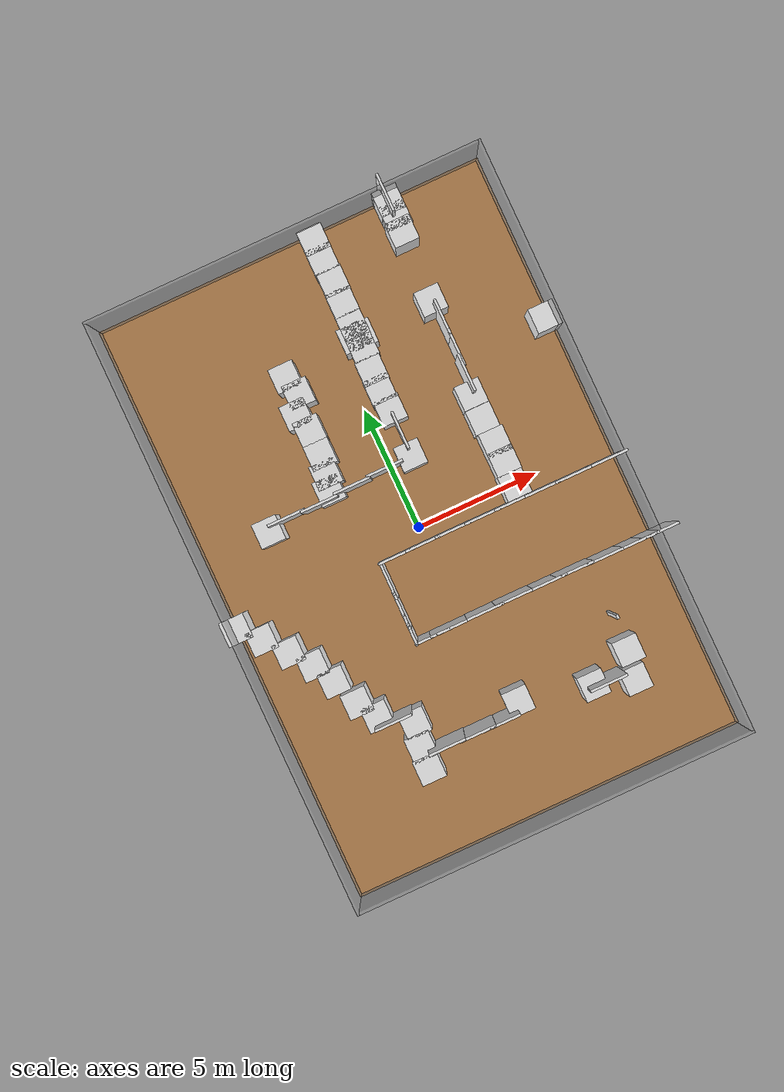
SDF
<sdf version="1.6">
 <world name="default">
  <light name="sun" type="directional">
   <pose>0 0 10 0 -0 0</pose>
   <diffuse>0.8 0.8 0.8 1</diffuse>
   <specular>0.2 0.2 0.2 1</specular>
   <attenuation>
    <range>1000</range>
    <constant>0.9</constant>
    <linear>0.01</linear>
    <quadratic>0.001</quadratic>
   </attenuation>
   <direction>-0.5 0.1 -0.9</direction>
  </light>
  <physics name="default_physics" default="0" type="ode">
   <real_time_update_rate>1000</real_time_update_rate>
   <max_step_size>0.001</max_step_size>
   <real_time_factor>1</real_time_factor>
   <ode>
    <solver>
     <type>quick</type>
     <iters>150</iters>
     <precon_iters>0</precon_iters>
     <sor>1.4</sor>
     <use_dynamic_moi_rescaling>1</use_dynamic_moi_rescaling>
    </solver>
    <constraints>
     <cfm>1e-05</cfm>
     <erp>0.2</erp>
     <contact_max_correcting_vel>2000</contact_max_correcting_vel>
     <contact_surface_layer>0.01</contact_surface_layer>
    </constraints>
   </ode>
  </physics>
  <model name="box_1">
   <pose>0.05 -12.05 1.25 0 -0 0</pose>
   <static>1</static>
   <link name="link">
    <collision name="collision"><geometry><box><size>16.1 0.1 2.5</size></box></geometry></collision>
    <visual name="visual">
     <geometry><box><size>16.1 0.1 2.5</size></box></geometry>
     <material>
      <script><name>Gazebo/GreyTransparent</name><uri>file://media/materials/scripts/gazebo.material</uri></script>
     </material>
    </visual>
   </link>
  </model>
  <model name="box_2">
   <pose>8.05 0.05 1.25 0 -0 0</pose>
   <static>1</static>
   <link name="link">
    <collision name="collision"><geometry><box><size>0.1 24.1 2.5</size></box></geometry></collision>
    <visual name="visual">
     <geometry><box><size>0.1 24.1 2.5</size></box></geometry>
     <material>
      <script><name>Gazebo/GreyTransparent</name><uri>file://media/materials/scripts/gazebo.material</uri></script>
     </material>
    </visual>
   </link>
  </model>
  <model name="box_3">
   <pose>-0.05 12.05 1.25 0 -0 0</pose>
   <static>1</static>
   <link name="link">
    <collision name="collision"><geometry><box><size>16.1 0.1 2.5</size></box></geometry></collision>
    <visual name="visual">
     <geometry><box><size>16.1 0.1 2.5</size></box></geometry>
     <material>
      <script><name>Gazebo/GreyTransparent</name><uri>file://media/materials/scripts/gazebo.material</uri></script>
     </material>
    </visual>
   </link>
  </model>
  <model name="box_4">
   <pose>-8.05 -0.05 1.25 0 -0 0</pose>
   <static>1</static>
   <link name="link">
    <collision name="collision"><geometry><box><size>0.1 24.1 2.5</size></box></geometry></collision>
    <visual name="visual">
     <geometry><box><size>0.1 24.1 2.5</size></box></geometry>
     <material>
      <script><name>Gazebo/GreyTransparent</name><uri>file://media/materials/scripts/gazebo.material</uri></script>
     </material>
    </visual>
   </link>
  </model>
  <model name="box_5">
   <pose>0 0 -0.05 0 -0 0</pose>
   <static>1</static>
   <link name="link">
    <collision name="collision"><geometry><box><size>16.2 24.2 0.1</size></box></geometry></collision>
    <visual name="visual">
     <geometry><box><size>16.2 24.2 0.1</size></box></geometry>
     <material>
      <script><name>Gazebo/WoodFloor</name><uri>file://media/materials/scripts/gazebo.material</uri></script>
     </material>
    </visual>
   </link>
  </model>
  <gravity>0 0 -9.8066</gravity>
  <magnetic_field>6e-06 2.3e-05 -4.2e-05</magnetic_field>
  <atmosphere type="adiabatic"/>
  <scene><ambient>0.4 0.4 0.4 1</ambient><background>0.7 0.7 0.7 1</background><shadows>1</shadows></scene>
  <spherical_coordinates>
   <surface_model>EARTH_WGS84</surface_model>
   <latitude_deg>0</latitude_deg>
   <longitude_deg>0</longitude_deg>
   <elevation>0</elevation>
   <heading_deg>0</heading_deg>
  </spherical_coordinates>
  <model name="box_8_clone">
   <pose>7.48667 -0.628309 1.25 0 -0 0</pose>
   <static>1</static>
   <link name="link">
    <collision name="collision"><geometry><box><size>1.5 0.1 2.5</size></box></geometry></collision>
    <visual name="visual">
     <geometry><box><size>1.5 0.1 2.5</size></box></geometry>
     <material>
      <script><name>Gazebo/White</name><uri>file://media/materials/scripts/gazebo.material</uri></script>
     </material>
    </visual>
   </link>
  </model>
  <model name="box_8_clone_clone">
   <pose>6.02834 -0.629635 1.25 0 -0 0</pose>
   <static>1</static>
   <link name="link">
    <collision name="collision"><geometry><box><size>1.5 0.1 2.5</size></box></geometry></collision>
    <visual name="visual">
     <geometry><box><size>1.5 0.1 2.5</size></box></geometry>
     <material>
      <script><name>Gazebo/White</name><uri>file://media/materials/scripts/gazebo.material</uri></script>
     </material>
    </visual>
   </link>
  </model>
  <model name="box_8_clone_clone_0">
   <pose>4.79045 -0.62339 1.25 0 -0 0</pose>
   <static>1</static>
   <link name="link">
    <collision name="collision"><geometry><box><size>1.5 0.1 2.5</size></box></geometry></collision>
    <visual name="visual">
     <geometry><box><size>1.5 0.1 2.5</size></box></geometry>
     <material>
      <script><name>Gazebo/White</name><uri>file://media/materials/scripts/gazebo.material</uri></script>
     </material>
    </visual>
   </link>
  </model>
  <model name="box_8_clone_clone_1">
   <pose>3.55347 -0.612787 1.25 0 -0 0</pose>
   <static>1</static>
   <link name="link">
    <collision name="collision"><geometry><box><size>1.5 0.1 2.5</size></box></geometry></collision>
    <visual name="visual">
     <geometry><box><size>1.5 0.1 2.5</size></box></geometry>
     <material>
      <script><name>Gazebo/White</name><uri>file://media/materials/scripts/gazebo.material</uri></script>
     </material>
    </visual>
   </link>
  </model>
  <model name="box_8_clone_clone_2">
   <pose>2.33718 -0.610519 1.25 0 -0 0</pose>
   <static>1</static>
   <link name="link">
    <collision name="collision"><geometry><box><size>1.5 0.1 2.5</size></box></geometry></collision>
    <visual name="visual">
     <geometry><box><size>1.5 0.1 2.5</size></box></geometry>
     <material>
      <script><name>Gazebo/White</name><uri>file://media/materials/scripts/gazebo.material</uri></script>
     </material>
    </visual>
   </link>
  </model>
  <model name="box_8_clone_clone_3">
   <pose>1.13648 -0.604834 1.25 0 -0 0</pose>
   <static>1</static>
   <link name="link">
    <collision name="collision"><geometry><box><size>1.5 0.1 2.5</size></box></geometry></collision>
    <visual name="visual">
     <geometry><box><size>1.5 0.1 2.5</size></box></geometry>
     <material>
      <script><name>Gazebo/White</name><uri>file://media/materials/scripts/gazebo.material</uri></script>
     </material>
    </visual>
   </link>
  </model>
  <model name="box_8_clone_clone_4">
   <pose>-0.06939 -0.608032 1.25 0 -0 0</pose>
   <static>1</static>
   <link name="link">
    <collision name="collision"><geometry><box><size>1.5 0.1 2.5</size></box></geometry></collision>
    <visual name="visual">
     <geometry><box><size>1.5 0.1 2.5</size></box></geometry>
     <material>
      <script><name>Gazebo/White</name><uri>file://media/materials/scripts/gazebo.material</uri></script>
     </material>
    </visual>
   </link>
  </model>
  <model name="box_8_clone_clone_5">
   <pose>-1.19812 -0.614896 1.25 0 -0 0</pose>
   <static>1</static>
   <link name="link">
    <collision name="collision"><geometry><box><size>1.5 0.1 2.5</size></box></geometry></collision>
    <visual name="visual">
     <geometry><box><size>1.5 0.1 2.5</size></box></geometry>
     <material>
      <script><name>Gazebo/White</name><uri>file://media/materials/scripts/gazebo.material</uri></script>
     </material>
    </visual>
   </link>
  </model>
  <model name="box_8_clone_clone_11">
   <pose>-0.566924 -3.87205 1.25 0 -0 0</pose>
   <static>1</static>
   <link name="link">
    <collision name="collision"><geometry><box><size>1.5 0.1 2.5</size></box></geometry></collision>
    <visual name="visual">
     <geometry><box><size>1.5 0.1 2.5</size></box></geometry>
     <material>
      <script><name>Gazebo/White</name><uri>file://media/materials/scripts/gazebo.material</uri></script>
     </material>
    </visual>
   </link>
  </model>
  <model name="box_8_clone_clone_12">
   <pose>0.932378 -3.8577 1.25 0 -0 0</pose>
   <static>1</static>
   <link name="link">
    <collision name="collision"><geometry><box><size>1.5 0.1 2.5</size></box></geometry></collision>
    <visual name="visual">
     <geometry><box><size>1.5 0.1 2.5</size></box></geometry>
     <material>
      <script><name>Gazebo/White</name><uri>file://media/materials/scripts/gazebo.material</uri></script>
     </material>
    </visual>
   </link>
  </model>
  <model name="box_8_clone_clone_13">
   <pose>2.09308 -3.84636 1.25 0 -0 0</pose>
   <static>1</static>
   <link name="link">
    <collision name="collision"><geometry><box><size>1.5 0.1 2.5</size></box></geometry></collision>
    <visual name="visual">
     <geometry><box><size>1.5 0.1 2.5</size></box></geometry>
     <material>
      <script><name>Gazebo/White</name><uri>file://media/materials/scripts/gazebo.material</uri></script>
     </material>
    </visual>
   </link>
  </model>
  <model name="box_9_clone_clone_0">
   <pose>-3.46298 -8.44795 0.75 0 -0 0</pose>
   <static>1</static>
   <link name="link">
    <collision name="collision"><geometry><box><size>1 1 1.5</size></box></geometry></collision>
    <visual name="visual">
     <geometry><box><size>1 1 1.5</size></box></geometry>
     <material>
      <script><name>Gazebo/White</name><uri>file://media/materials/scripts/gazebo.material</uri></script>
     </material>
    </visual>
   </link>
  </model>
  <model name="box_9_clone_clone_1">
   <pose>-3.40186 -7.56359 0.75 0 -0 0</pose>
   <static>1</static>
   <link name="link">
    <collision name="collision"><geometry><box><size>1 1 1.5</size></box></geometry></collision>
    <visual name="visual">
     <geometry><box><size>1 1 1.5</size></box></geometry>
     <material>
      <script><name>Gazebo/White</name><uri>file://media/materials/scripts/gazebo.material</uri></script>
     </material>
    </visual>
   </link>
  </model>
  <model name="box_9_clone_clone_2">
   <pose>-3.23885 -6.64819 0.75 0 -0 0</pose>
   <static>1</static>
   <link name="link">
    <collision name="collision"><geometry><box><size>1 1 1.5</size></box></geometry></collision>
    <visual name="visual">
     <geometry><box><size>1 1 1.5</size></box></geometry>
     <material>
      <script><name>Gazebo/White</name><uri>file://media/materials/scripts/gazebo.material</uri></script>
     </material>
    </visual>
   </link>
  </model>
  <model name="box_9_clone_clone_3">
   <pose>5.04068 -8.64867 0.75 0 -0 0</pose>
   <static>1</static>
   <link name="link">
    <collision name="collision"><geometry><box><size>1 1 1.5</size></box></geometry></collision>
    <visual name="visual">
     <geometry><box><size>1 1 1.5</size></box></geometry>
     <material>
      <script><name>Gazebo/White</name><uri>file://media/materials/scripts/gazebo.material</uri></script>
     </material>
    </visual>
   </link>
  </model>
  <model name="box_9_clone_clone_4">
   <pose>5.24363 -7.53941 0.75 0 -0 0</pose>
   <static>1</static>
   <link name="link">
    <collision name="collision"><geometry><box><size>1 1 1.5</size></box></geometry></collision>
    <visual name="visual">
     <geometry><box><size>1 1 1.5</size></box></geometry>
     <material>
      <script><name>Gazebo/White</name><uri>file://media/materials/scripts/gazebo.material</uri></script>
     </material>
    </visual>
   </link>
  </model>
  <model name="box_9_clone_clone_5">
   <pose>-2.21389 4.06737 0.75 0 -0 0</pose>
   <static>1</static>
   <link name="link">
    <collision name="collision"><geometry><box><size>1 1 1.5</size></box></geometry></collision>
    <visual name="visual">
     <geometry><box><size>1 1 1.5</size></box></geometry>
     <material>
      <script><name>Gazebo/White</name><uri>file://media/materials/scripts/gazebo.material</uri></script>
     </material>
    </visual>
   </link>
  </model>
  <model name="box_9_clone_clone_6">
   <pose>-2.20594 5.05311 0.75 0 -0 0</pose>
   <static>1</static>
   <link name="link">
    <collision name="collision"><geometry><box><size>1 1 1.5</size></box></geometry></collision>
    <visual name="visual">
     <geometry><box><size>1 1 1.5</size></box></geometry>
     <material>
      <script><name>Gazebo/White</name><uri>file://media/materials/scripts/gazebo.material</uri></script>
     </material>
    </visual>
   </link>
  </model>
  <model name="box_9_clone_clone_7">
   <pose>-2.40815 5.82285 0.75 0 -0 0</pose>
   <static>1</static>
   <link name="link">
    <collision name="collision"><geometry><box><size>1 1 1.5</size></box></geometry></collision>
    <visual name="visual">
     <geometry><box><size>1 1 1.5</size></box></geometry>
     <material>
      <script><name>Gazebo/White</name><uri>file://media/materials/scripts/gazebo.material</uri></script>
     </material>
    </visual>
   </link>
  </model>
  <model name="box_9_clone_clone_8">
   <pose>-2 6.49358 0.75 0 -0 0</pose>
   <static>1</static>
   <link name="link">
    <collision name="collision"><geometry><box><size>1 1 1.5</size></box></geometry></collision>
    <visual name="visual">
     <geometry><box><size>1 1 1.5</size></box></geometry>
     <material>
      <script><name>Gazebo/White</name><uri>file://media/materials/scripts/gazebo.material</uri></script>
     </material>
    </visual>
   </link>
  </model>
  <model name="box_9_clone_clone_9">
   <pose>-2.19565 7.27454 0.75 0 -0 0</pose>
   <static>1</static>
   <link name="link">
    <collision name="collision"><geometry><box><size>1 1 1.5</size></box></geometry></collision>
    <visual name="visual">
     <geometry><box><size>1 1 1.5</size></box></geometry>
     <material>
      <script><name>Gazebo/White</name><uri>file://media/materials/scripts/gazebo.material</uri></script>
     </material>
    </visual>
   </link>
  </model>
  <model name="box_8_clone_clone_13_clone">
   <pose>3.50729 -3.85595 1.25 0 -0 0</pose>
   <static>1</static>
   <link name="link">
    <collision name="collision"><geometry><box><size>1.5 0.1 2.5</size></box></geometry></collision>
    <visual name="visual">
     <geometry><box><size>1.5 0.1 2.5</size></box></geometry>
     <material>
      <script><name>Gazebo/White</name><uri>file://media/materials/scripts/gazebo.material</uri></script>
     </material>
    </visual>
   </link>
  </model>
  <model name="box_8_clone_clone_13_clone_clone">
   <pose>4.59318 -3.85436 1.25 0 -0 0</pose>
   <static>1</static>
   <link name="link">
    <collision name="collision"><geometry><box><size>1.5 0.1 2.5</size></box></geometry></collision>
    <visual name="visual">
     <geometry><box><size>1.5 0.1 2.5</size></box></geometry>
     <material>
      <script><name>Gazebo/White</name><uri>file://media/materials/scripts/gazebo.material</uri></script>
     </material>
    </visual>
   </link>
  </model>
  <model name="box_8_clone_clone_13_clone_clone_clone">
   <pose>5.79386 -3.87288 1.25 0 -0 0</pose>
   <static>1</static>
   <link name="link">
    <collision name="collision"><geometry><box><size>1.5 0.1 2.5</size></box></geometry></collision>
    <visual name="visual">
     <geometry><box><size>1.5 0.1 2.5</size></box></geometry>
     <material>
      <script><name>Gazebo/White</name><uri>file://media/materials/scripts/gazebo.material</uri></script>
     </material>
    </visual>
   </link>
  </model>
  <model name="box_8_clone_clone_13_clone_clone_clone_clone">
   <pose>7.15374 -3.87624 1.25 0 -0 0</pose>
   <static>1</static>
   <link name="link">
    <collision name="collision"><geometry><box><size>1.5 0.1 2.5</size></box></geometry></collision>
    <visual name="visual">
     <geometry><box><size>1.5 0.1 2.5</size></box></geometry>
     <material>
      <script><name>Gazebo/White</name><uri>file://media/materials/scripts/gazebo.material</uri></script>
     </material>
    </visual>
   </link>
  </model>
  <model name="box_8_clone_clone_13_clone_clone_clone_clone_0">
   <pose>8.06241 -3.86612 1.25 0 -0 0</pose>
   <static>1</static>
   <link name="link">
    <collision name="collision"><geometry><box><size>1.5 0.1 2.5</size></box></geometry></collision>
    <visual name="visual">
     <geometry><box><size>1.5 0.1 2.5</size></box></geometry>
     <material>
      <script><name>Gazebo/White</name><uri>file://media/materials/scripts/gazebo.material</uri></script>
     </material>
    </visual>
   </link>
  </model>
  <model name="box_6_clone_clone">
   <pose>-1.85615 -1.32182 1.25 0 -0 0</pose>
   <static>1</static>
   <link name="link">
    <collision name="collision"><geometry><box><size>0.1 1.5 2.5</size></box></geometry></collision>
    <visual name="visual">
     <geometry><box><size>0.1 1.5 2.5</size></box></geometry>
     <material>
      <script><name>Gazebo/White</name><uri>file://media/materials/scripts/gazebo.material</uri></script>
     </material>
    </visual>
   </link>
  </model>
  <model name="box_6_clone_clone_0">
   <pose>-1.87249 -2.52994 1.25 0 -0 0</pose>
   <static>1</static>
   <link name="link">
    <collision name="collision"><geometry><box><size>0.1 1.5 2.5</size></box></geometry></collision>
    <visual name="visual">
     <geometry><box><size>0.1 1.5 2.5</size></box></geometry>
     <material>
      <script><name>Gazebo/White</name><uri>file://media/materials/scripts/gazebo.material</uri></script>
     </material>
    </visual>
   </link>
  </model>
  <model name="box_6_clone_clone_1">
   <pose>-1.88063 -3.20694 1.25 0 -0 0</pose>
   <static>1</static>
   <link name="link">
    <collision name="collision"><geometry><box><size>0.1 1.5 2.5</size></box></geometry></collision>
    <visual name="visual">
     <geometry><box><size>0.1 1.5 2.5</size></box></geometry>
     <material>
      <script><name>Gazebo/White</name><uri>file://media/materials/scripts/gazebo.material</uri></script>
     </material>
    </visual>
   </link>
  </model>
  <model name="box_8_clone_clone_11_clone">
   <pose>-1.1954 -3.87817 1.25 0 -0 0</pose>
   <static>1</static>
   <link name="link">
    <collision name="collision"><geometry><box><size>1.5 0.1 2.5</size></box></geometry></collision>
    <visual name="visual">
     <geometry><box><size>1.5 0.1 2.5</size></box></geometry>
     <material>
      <script><name>Gazebo/White</name><uri>file://media/materials/scripts/gazebo.material</uri></script>
     </material>
    </visual>
   </link>
  </model>
  <model name="box_9_clone_clone_5_clone">
   <pose>3.96534 -0.058836 0.75 0 -0 0</pose>
   <static>1</static>
   <link name="link">
    <collision name="collision"><geometry><box><size>1 1 1.5</size></box></geometry></collision>
    <visual name="visual">
     <geometry><box><size>1 1 1.5</size></box></geometry>
     <material>
      <script><name>Gazebo/White</name><uri>file://media/materials/scripts/gazebo.material</uri></script>
     </material>
    </visual>
   </link>
  </model>
  <model name="box_9_clone_clone_5_clone_0">
   <pose>3.99405 0.91295 0.75 0 -0 0</pose>
   <static>1</static>
   <link name="link">
    <collision name="collision"><geometry><box><size>1 1 1.5</size></box></geometry></collision>
    <visual name="visual">
     <geometry><box><size>1 1 1.5</size></box></geometry>
     <material>
      <script><name>Gazebo/White</name><uri>file://media/materials/scripts/gazebo.material</uri></script>
     </material>
    </visual>
   </link>
  </model>
  <model name="box_9_clone_clone_5_clone_1">
   <pose>3.98833 1.72238 0.75 0 -0 0</pose>
   <static>1</static>
   <link name="link">
    <collision name="collision"><geometry><box><size>1 1 1.5</size></box></geometry></collision>
    <visual name="visual">
     <geometry><box><size>1 1 1.5</size></box></geometry>
     <material>
      <script><name>Gazebo/White</name><uri>file://media/materials/scripts/gazebo.material</uri></script>
     </material>
    </visual>
   </link>
  </model>
  <model name="box_9_clone_clone_5_clone_2">
   <pose>3.91224 2.71803 0.75 0 -0 0</pose>
   <static>1</static>
   <link name="link">
    <collision name="collision"><geometry><box><size>1 1 1.5</size></box></geometry></collision>
    <visual name="visual">
     <geometry><box><size>1 1 1.5</size></box></geometry>
     <material>
      <script><name>Gazebo/White</name><uri>file://media/materials/scripts/gazebo.material</uri></script>
     </material>
    </visual>
   </link>
  </model>
  <model name="box_9_clone_clone_5_clone_3">
   <pose>3.90875 3.72901 0.75 0 -0 0</pose>
   <static>1</static>
   <link name="link">
    <collision name="collision"><geometry><box><size>1 1 1.5</size></box></geometry></collision>
    <visual name="visual">
     <geometry><box><size>1 1 1.5</size></box></geometry>
     <material>
      <script><name>Gazebo/White</name><uri>file://media/materials/scripts/gazebo.material</uri></script>
     </material>
    </visual>
   </link>
  </model>
  <model name="box_6_clone_clone_2">
   <pose>4.0167 4.46766 1.25 0 -0 0</pose>
   <static>1</static>
   <link name="link">
    <collision name="collision"><geometry><box><size>0.1 1.5 2.5</size></box></geometry></collision>
    <visual name="visual">
     <geometry><box><size>0.1 1.5 2.5</size></box></geometry>
     <material>
      <script><name>Gazebo/White</name><uri>file://media/materials/scripts/gazebo.material</uri></script>
     </material>
    </visual>
   </link>
  </model>
  <model name="box_6_clone_clone_3">
   <pose>4.07127 5.47003 1.25 0 -0 0</pose>
   <static>1</static>
   <link name="link">
    <collision name="collision"><geometry><box><size>0.1 1.5 2.5</size></box></geometry></collision>
    <visual name="visual">
     <geometry><box><size>0.1 1.5 2.5</size></box></geometry>
     <material>
      <script><name>Gazebo/White</name><uri>file://media/materials/scripts/gazebo.material</uri></script>
     </material>
    </visual>
   </link>
  </model>
  <model name="box_6_clone_clone_4">
   <pose>4.06892 6.67693 1.25 0 -0 0</pose>
   <static>1</static>
   <link name="link">
    <collision name="collision"><geometry><box><size>0.1 1.5 2.5</size></box></geometry></collision>
    <visual name="visual">
     <geometry><box><size>0.1 1.5 2.5</size></box></geometry>
     <material>
      <script><name>Gazebo/White</name><uri>file://media/materials/scripts/gazebo.material</uri></script>
     </material>
    </visual>
   </link>
  </model>
  <model name="box_9_clone_clone_9_clone">
   <pose>0.96273 11.5341 0.75 0 -0 0</pose>
   <static>1</static>
   <link name="link">
    <collision name="collision"><geometry><box><size>1 1 1.5</size></box></geometry></collision>
    <visual name="visual">
     <geometry><box><size>1 1 1.5</size></box></geometry>
     <material>
      <script><name>Gazebo/White</name><uri>file://media/materials/scripts/gazebo.material</uri></script>
     </material>
    </visual>
   </link>
  </model>
  <model name="box_9_clone_clone_9_clone_0">
   <pose>0.951303 10.7343 0.75 0 -0 0</pose>
   <static>1</static>
   <link name="link">
    <collision name="collision"><geometry><box><size>1 1 1.5</size></box></geometry></collision>
    <visual name="visual">
     <geometry><box><size>1 1 1.5</size></box></geometry>
     <material>
      <script><name>Gazebo/White</name><uri>file://media/materials/scripts/gazebo.material</uri></script>
     </material>
    </visual>
   </link>
  </model>
  <model name="box_9_clone_clone_9_clone_1">
   <pose>0.976499 9.79829 0.75 0 -0 0</pose>
   <static>1</static>
   <link name="link">
    <collision name="collision"><geometry><box><size>1 1 1.5</size></box></geometry></collision>
    <visual name="visual">
     <geometry><box><size>1 1 1.5</size></box></geometry>
     <material>
      <script><name>Gazebo/White</name><uri>file://media/materials/scripts/gazebo.material</uri></script>
     </material>
    </visual>
   </link>
  </model>
  <model name="box_9_clone_clone_9_clone_2">
   <pose>0.954322 8.93155 0.75 0 -0 0</pose>
   <static>1</static>
   <link name="link">
    <collision name="collision"><geometry><box><size>1 1 1.5</size></box></geometry></collision>
    <visual name="visual">
     <geometry><box><size>1 1 1.5</size></box></geometry>
     <material>
      <script><name>Gazebo/White</name><uri>file://media/materials/scripts/gazebo.material</uri></script>
     </material>
    </visual>
   </link>
  </model>
  <model name="box_9_clone_clone_9_clone_3">
   <pose>0.946415 7.9797 0.75 0 -0 0</pose>
   <static>1</static>
   <link name="link">
    <collision name="collision"><geometry><box><size>1 1 1.5</size></box></geometry></collision>
    <visual name="visual">
     <geometry><box><size>1 1 1.5</size></box></geometry>
     <material>
      <script><name>Gazebo/White</name><uri>file://media/materials/scripts/gazebo.material</uri></script>
     </material>
    </visual>
   </link>
  </model>
  <model name="box_9_clone_clone_9_clone_4">
   <pose>0.936307 7.10204 0.75 0 -0 0</pose>
   <static>1</static>
   <link name="link">
    <collision name="collision"><geometry><box><size>1 1 1.5</size></box></geometry></collision>
    <visual name="visual">
     <geometry><box><size>1 1 1.5</size></box></geometry>
     <material>
      <script><name>Gazebo/White</name><uri>file://media/materials/scripts/gazebo.material</uri></script>
     </material>
    </visual>
   </link>
  </model>
  <model name="box_9_clone_clone_9_clone_5">
   <pose>0.888259 6.13659 0.75 0 -0 0</pose>
   <static>1</static>
   <link name="link">
    <collision name="collision"><geometry><box><size>1 1 1.5</size></box></geometry></collision>
    <visual name="visual">
     <geometry><box><size>1 1 1.5</size></box></geometry>
     <material>
      <script><name>Gazebo/White</name><uri>file://media/materials/scripts/gazebo.material</uri></script>
     </material>
    </visual>
   </link>
  </model>
  <model name="box_9_clone_clone_9_clone_6">
   <pose>0.861538 5.35753 0.75 0 -0 0</pose>
   <static>1</static>
   <link name="link">
    <collision name="collision"><geometry><box><size>1 1 1.5</size></box></geometry></collision>
    <visual name="visual">
     <geometry><box><size>1 1 1.5</size></box></geometry>
     <material>
      <script><name>Gazebo/White</name><uri>file://media/materials/scripts/gazebo.material</uri></script>
     </material>
    </visual>
   </link>
  </model>
  <model name="box_9_clone_clone_9_clone_7">
   <pose>0.897234 4.48322 0.75 0 -0 0</pose>
   <static>1</static>
   <link name="link">
    <collision name="collision"><geometry><box><size>1 1 1.5</size></box></geometry></collision>
    <visual name="visual">
     <geometry><box><size>1 1 1.5</size></box></geometry>
     <material>
      <script><name>Gazebo/White</name><uri>file://media/materials/scripts/gazebo.material</uri></script>
     </material>
    </visual>
   </link>
  </model>
  <model name="box_6_clone_clone_5">
   <pose>0.889787 3.56461 1.25 0 -0 0</pose>
   <static>1</static>
   <link name="link">
    <collision name="collision"><geometry><box><size>0.1 1.5 2.5</size></box></geometry></collision>
    <visual name="visual">
     <geometry><box><size>0.1 1.5 2.5</size></box></geometry>
     <material>
      <script><name>Gazebo/White</name><uri>file://media/materials/scripts/gazebo.material</uri></script>
     </material>
    </visual>
   </link>
  </model>
  <model name="box_9_clone_clone_5_clone_4">
   <pose>0.8658 2.60984 0.75 0 -0 0</pose>
   <static>1</static>
   <link name="link">
    <collision name="collision"><geometry><box><size>1 1 1.5</size></box></geometry></collision>
    <visual name="visual">
     <geometry><box><size>1 1 1.5</size></box></geometry>
     <material>
      <script><name>Gazebo/White</name><uri>file://media/materials/scripts/gazebo.material</uri></script>
     </material>
    </visual>
   </link>
  </model>
  <model name="box_8_clone_clone_4_clone">
   <pose>-0.234697 2.5213 1.25 0 -0 0</pose>
   <static>1</static>
   <link name="link">
    <collision name="collision"><geometry><box><size>1.5 0.1 2.5</size></box></geometry></collision>
    <visual name="visual">
     <geometry><box><size>1.5 0.1 2.5</size></box></geometry>
     <material>
      <script><name>Gazebo/White</name><uri>file://media/materials/scripts/gazebo.material</uri></script>
     </material>
    </visual>
   </link>
  </model>
  <model name="box_8_clone_clone_4_clone_0">
   <pose>-1.6022 2.45178 1.25 0 -0 0</pose>
   <static>1</static>
   <link name="link">
    <collision name="collision"><geometry><box><size>1.5 0.1 2.5</size></box></geometry></collision>
    <visual name="visual">
     <geometry><box><size>1.5 0.1 2.5</size></box></geometry>
     <material>
      <script><name>Gazebo/White</name><uri>file://media/materials/scripts/gazebo.material</uri></script>
     </material>
    </visual>
   </link>
  </model>
  <model name="box_8_clone_clone_4_clone_1">
   <pose>-2.98043 2.34503 1.25 0 -0 0</pose>
   <static>1</static>
   <link name="link">
    <collision name="collision"><geometry><box><size>1.5 0.1 2.5</size></box></geometry></collision>
    <visual name="visual">
     <geometry><box><size>1.5 0.1 2.5</size></box></geometry>
     <material>
      <script><name>Gazebo/White</name><uri>file://media/materials/scripts/gazebo.material</uri></script>
     </material>
    </visual>
   </link>
  </model>
  <model name="box_8_clone_clone_4_clone_2">
   <pose>-4.30694 2.39293 1.25 0 -0 0</pose>
   <static>1</static>
   <link name="link">
    <collision name="collision"><geometry><box><size>1.5 0.1 2.5</size></box></geometry></collision>
    <visual name="visual">
     <geometry><box><size>1.5 0.1 2.5</size></box></geometry>
     <material>
      <script><name>Gazebo/White</name><uri>file://media/materials/scripts/gazebo.material</uri></script>
     </material>
    </visual>
   </link>
  </model>
  <model name="box_9_clone_clone_7_clone">
   <pose>-5.21616 2.23106 0.75 0 -0 0</pose>
   <static>1</static>
   <link name="link">
    <collision name="collision"><geometry><box><size>1 1 1.5</size></box></geometry></collision>
    <visual name="visual">
     <geometry><box><size>1 1 1.5</size></box></geometry>
     <material>
      <script><name>Gazebo/White</name><uri>file://media/materials/scripts/gazebo.material</uri></script>
     </material>
    </visual>
   </link>
  </model>
  <model name="box_9_clone_clone_5_clone_5">
   <pose>-2.33314 3.29946 0.75 0 -0 0</pose>
   <static>1</static>
   <link name="link">
    <collision name="collision"><geometry><box><size>1 1 1.5</size></box></geometry></collision>
    <visual name="visual">
     <geometry><box><size>1 1 1.5</size></box></geometry>
     <material>
      <script><name>Gazebo/White</name><uri>file://media/materials/scripts/gazebo.material</uri></script>
     </material>
    </visual>
   </link>
  </model>
  <model name="box_9_clone_clone_5_clone_6">
   <pose>-2.48571 2.70071 0.75 0 -0 0</pose>
   <static>1</static>
   <link name="link">
    <collision name="collision"><geometry><box><size>1 1 1.5</size></box></geometry></collision>
    <visual name="visual">
     <geometry><box><size>1 1 1.5</size></box></geometry>
     <material>
      <script><name>Gazebo/White</name><uri>file://media/materials/scripts/gazebo.material</uri></script>
     </material>
    </visual>
   </link>
  </model>
  <model name="box_9_clone_clone_7_clone_clone">
   <pose>-7.89766 -0.627489 0.75 0 -0 0</pose>
   <static>1</static>
   <link name="link">
    <collision name="collision"><geometry><box><size>1 1 1.5</size></box></geometry></collision>
    <visual name="visual">
     <geometry><box><size>1 1 1.5</size></box></geometry>
     <material>
      <script><name>Gazebo/White</name><uri>file://media/materials/scripts/gazebo.material</uri></script>
     </material>
    </visual>
   </link>
  </model>
  <model name="box_9_clone_clone_7_clone_clone_0">
   <pose>-7.17028 -1.37248 0.75 0 -0 0</pose>
   <static>1</static>
   <link name="link">
    <collision name="collision"><geometry><box><size>1 1 1.5</size></box></geometry></collision>
    <visual name="visual">
     <geometry><box><size>1 1 1.5</size></box></geometry>
     <material>
      <script><name>Gazebo/White</name><uri>file://media/materials/scripts/gazebo.material</uri></script>
     </material>
    </visual>
   </link>
  </model>
  <model name="box_9_clone_clone_7_clone_clone_1">
   <pose>-6.44194 -2.23118 0.75 0 -0 0</pose>
   <static>1</static>
   <link name="link">
    <collision name="collision"><geometry><box><size>1 1 1.5</size></box></geometry></collision>
    <visual name="visual">
     <geometry><box><size>1 1 1.5</size></box></geometry>
     <material>
      <script><name>Gazebo/White</name><uri>file://media/materials/scripts/gazebo.material</uri></script>
     </material>
    </visual>
   </link>
  </model>
  <model name="box_9_clone_clone_7_clone_clone_2">
   <pose>-5.82661 -3.0536 0.75 0 -0 0</pose>
   <static>1</static>
   <link name="link">
    <collision name="collision"><geometry><box><size>1 1 1.5</size></box></geometry></collision>
    <visual name="visual">
     <geometry><box><size>1 1 1.5</size></box></geometry>
     <material>
      <script><name>Gazebo/White</name><uri>file://media/materials/scripts/gazebo.material</uri></script>
     </material>
    </visual>
   </link>
  </model>
  <model name="box_9_clone_clone_7_clone_clone_3">
   <pose>-5.3619 -3.95424 0.75 0 -0 0</pose>
   <static>1</static>
   <link name="link">
    <collision name="collision"><geometry><box><size>1 1 1.5</size></box></geometry></collision>
    <visual name="visual">
     <geometry><box><size>1 1 1.5</size></box></geometry>
     <material>
      <script><name>Gazebo/White</name><uri>file://media/materials/scripts/gazebo.material</uri></script>
     </material>
    </visual>
   </link>
  </model>
  <model name="box_9_clone_clone_7_clone_clone_4">
   <pose>-4.89443 -5.04481 0.75 0 -0 0</pose>
   <static>1</static>
   <link name="link">
    <collision name="collision"><geometry><box><size>1 1 1.5</size></box></geometry></collision>
    <visual name="visual">
     <geometry><box><size>1 1 1.5</size></box></geometry>
     <material>
      <script><name>Gazebo/White</name><uri>file://media/materials/scripts/gazebo.material</uri></script>
     </material>
    </visual>
   </link>
  </model>
  <model name="box_9_clone_clone_7_clone_clone_5">
   <pose>-4.42171 -5.82067 0.75 0 -0 0</pose>
   <static>1</static>
   <link name="link">
    <collision name="collision"><geometry><box><size>1 1 1.5</size></box></geometry></collision>
    <visual name="visual">
     <geometry><box><size>1 1 1.5</size></box></geometry>
     <material>
      <script><name>Gazebo/White</name><uri>file://media/materials/scripts/gazebo.material</uri></script>
     </material>
    </visual>
   </link>
  </model>
  <model name="box_8_clone_clone_4_clone_2_clone">
   <pose>-3.89284 -6.16269 1.25 0 -0 0</pose>
   <static>1</static>
   <link name="link">
    <collision name="collision"><geometry><box><size>1.5 0.1 2.5</size></box></geometry></collision>
    <visual name="visual">
     <geometry><box><size>1.5 0.1 2.5</size></box></geometry>
     <material>
      <script><name>Gazebo/White</name><uri>file://media/materials/scripts/gazebo.material</uri></script>
     </material>
    </visual>
   </link>
  </model>
  <model name="box_8_clone_clone_4_clone_0_clone">
   <pose>3.96979 -8.18121 1.25 0 -0 0</pose>
   <static>1</static>
   <link name="link">
    <collision name="collision"><geometry><box><size>1.5 0.1 2.5</size></box></geometry></collision>
    <visual name="visual">
     <geometry><box><size>1.5 0.1 2.5</size></box></geometry>
     <material>
      <script><name>Gazebo/White</name><uri>file://media/materials/scripts/gazebo.material</uri></script>
     </material>
    </visual>
   </link>
  </model>
  <model name="box_8_clone_clone_4_clone_0_clone_0">
   <pose>-2.46431 -7.82356 1.25 0 -0 0</pose>
   <static>1</static>
   <link name="link">
    <collision name="collision"><geometry><box><size>1.5 0.1 2.5</size></box></geometry></collision>
    <visual name="visual">
     <geometry><box><size>1.5 0.1 2.5</size></box></geometry>
     <material>
      <script><name>Gazebo/White</name><uri>file://media/materials/scripts/gazebo.material</uri></script>
     </material>
    </visual>
   </link>
  </model>
  <model name="box_8_clone_clone_4_clone_0_clone_1">
   <pose>-1.22633 -7.84729 1.25 0 -0 0</pose>
   <static>1</static>
   <link name="link">
    <collision name="collision"><geometry><box><size>1.5 0.1 2.5</size></box></geometry></collision>
    <visual name="visual">
     <geometry><box><size>1.5 0.1 2.5</size></box></geometry>
     <material>
      <script><name>Gazebo/White</name><uri>file://media/materials/scripts/gazebo.material</uri></script>
     </material>
    </visual>
   </link>
  </model>
  <model name="box_8_clone_clone_4_clone_0_clone_2">
   <pose>-0.238809 -7.86091 1.25 0 -0 0</pose>
   <static>1</static>
   <link name="link">
    <collision name="collision"><geometry><box><size>1.5 0.1 2.5</size></box></geometry></collision>
    <visual name="visual">
     <geometry><box><size>1.5 0.1 2.5</size></box></geometry>
     <material>
      <script><name>Gazebo/White</name><uri>file://media/materials/scripts/gazebo.material</uri></script>
     </material>
    </visual>
   </link>
  </model>
  <model name="box_6_clone_clone_clone">
   <pose>5.28718 -6.08876 1.25 0 -0 0</pose>
   <static>1</static>
   <link name="link">
    <collision name="collision"><geometry><box><size>0.1 0.160913 2.5</size></box></geometry></collision>
    <visual name="visual">
     <geometry><box><size>0.1 0.160913 2.5</size></box></geometry>
     <material>
      <script><name>Gazebo/White</name><uri>file://media/materials/scripts/gazebo.material</uri></script>
     </material>
    </visual>
   </link>
  </model>
  <model name="box_9_clone_clone_5_clone_2_clone">
   <pose>7.67551 5.23115 0.75 0 -0 0</pose>
   <static>1</static>
   <link name="link">
    <collision name="collision"><geometry><box><size>1 1 1.5</size></box></geometry></collision>
    <visual name="visual">
     <geometry><box><size>1 1 1.5</size></box></geometry>
     <material>
      <script><name>Gazebo/White</name><uri>file://media/materials/scripts/gazebo.material</uri></script>
     </material>
    </visual>
   </link>
  </model>
  <model name="box_9_clone_clone_5_clone_2_clone_0">
   <pose>4.02304 7.59814 0.75 0 -0 0</pose>
   <static>1</static>
   <link name="link">
    <collision name="collision"><geometry><box><size>1 1 1.5</size></box></geometry></collision>
    <visual name="visual">
     <geometry><box><size>1 1 1.5</size></box></geometry>
     <material>
      <script><name>Gazebo/White</name><uri>file://media/materials/scripts/gazebo.material</uri></script>
     </material>
    </visual>
   </link>
  </model>
  <model name="box_9_clone_clone_5_clone_2_clone_0_clone">
   <pose>0.652057 -7.5435 0.75 0 -0 0</pose>
   <static>1</static>
   <link name="link">
    <collision name="collision"><geometry><box><size>1 1 1.5</size></box></geometry></collision>
    <visual name="visual">
     <geometry><box><size>1 1 1.5</size></box></geometry>
     <material>
      <script><name>Gazebo/White</name><uri>file://media/materials/scripts/gazebo.material</uri></script>
     </material>
    </visual>
   </link>
  </model>
  <model name="box_9_clone_clone_5_clone_2_clone_0_clone_0">
   <pose>3.49636 -8.18539 0.75 0 -0 0</pose>
   <static>1</static>
   <link name="link">
    <collision name="collision"><geometry><box><size>1 1 1.5</size></box></geometry></collision>
    <visual name="visual">
     <geometry><box><size>1 1 1.5</size></box></geometry>
     <material>
      <script><name>Gazebo/White</name><uri>file://media/materials/scripts/gazebo.material</uri></script>
     </material>
    </visual>
   </link>
  </model>
  <model name="box_6_clone_clone_4_clone">
   <pose>4.07842 11.7768 1.25 0 -0 0</pose>
   <static>1</static>
   <link name="link">
    <collision name="collision"><geometry><box><size>0.1 1.5 2.5</size></box></geometry></collision>
    <visual name="visual">
     <geometry><box><size>0.1 1.5 2.5</size></box></geometry>
     <material>
      <script><name>Gazebo/White</name><uri>file://media/materials/scripts/gazebo.material</uri></script>
     </material>
    </visual>
   </link>
  </model>
  <model name="box_9_clone_clone_5_clone_2_clone_0_clone_1">
   <pose>4.12657 10.422 0.75 0 -0 0</pose>
   <static>1</static>
   <link name="link">
    <collision name="collision"><geometry><box><size>1 1 1.5</size></box></geometry></collision>
    <visual name="visual">
     <geometry><box><size>1 1 1.5</size></box></geometry>
     <material>
      <script><name>Gazebo/White</name><uri>file://media/materials/scripts/gazebo.material</uri></script>
     </material>
    </visual>
   </link>
  </model>
  <model name="box_9_clone_clone_9_clone_3_clone">
   <pose>1.083 7.52472 0.75 0 -0 0</pose>
   <static>1</static>
   <link name="link">
    <collision name="collision"><geometry><box><size>1 1 1.5</size></box></geometry></collision>
    <visual name="visual">
     <geometry><box><size>1 1 1.5</size></box></geometry>
     <material>
      <script><name>Gazebo/White</name><uri>file://media/materials/scripts/gazebo.material</uri></script>
     </material>
    </visual>
   </link>
  </model>
  <model name="box_9_clone_clone_9_clone_3_clone_0">
   <pose>0.759218 7.54574 0.75 0 -0 0</pose>
   <static>1</static>
   <link name="link">
    <collision name="collision"><geometry><box><size>1 1 1.5</size></box></geometry></collision>
    <visual name="visual">
     <geometry><box><size>1 1 1.5</size></box></geometry>
     <material>
      <script><name>Gazebo/White</name><uri>file://media/materials/scripts/gazebo.material</uri></script>
     </material>
    </visual>
   </link>
  </model>
  <model name="box_9_clone_clone_5_clone_2_clone_0_clone_1_clone">
   <pose>4.15601 11.692 0.75 0 -0 0</pose>
   <static>1</static>
   <link name="link">
    <collision name="collision"><geometry><box><size>1 1 1.5</size></box></geometry></collision>
    <visual name="visual">
     <geometry><box><size>1 1 1.5</size></box></geometry>
     <material>
      <script><name>Gazebo/White</name><uri>file://media/materials/scripts/gazebo.material</uri></script>
     </material>
    </visual>
   </link>
  </model>
  <model name="box_9_clone_clone_5_clone_2_clone_0_clone_1_clone_0">
   <pose>4.16263 11.0885 0.75 0 -0 0</pose>
   <static>1</static>
   <link name="link">
    <collision name="collision"><geometry><box><size>1 1 1.5</size></box></geometry></collision>
    <visual name="visual">
     <geometry><box><size>1 1 1.5</size></box></geometry>
     <material>
      <script><name>Gazebo/White</name><uri>file://media/materials/scripts/gazebo.material</uri></script>
     </material>
    </visual>
   </link>
  </model>
 </world>
</sdf>
